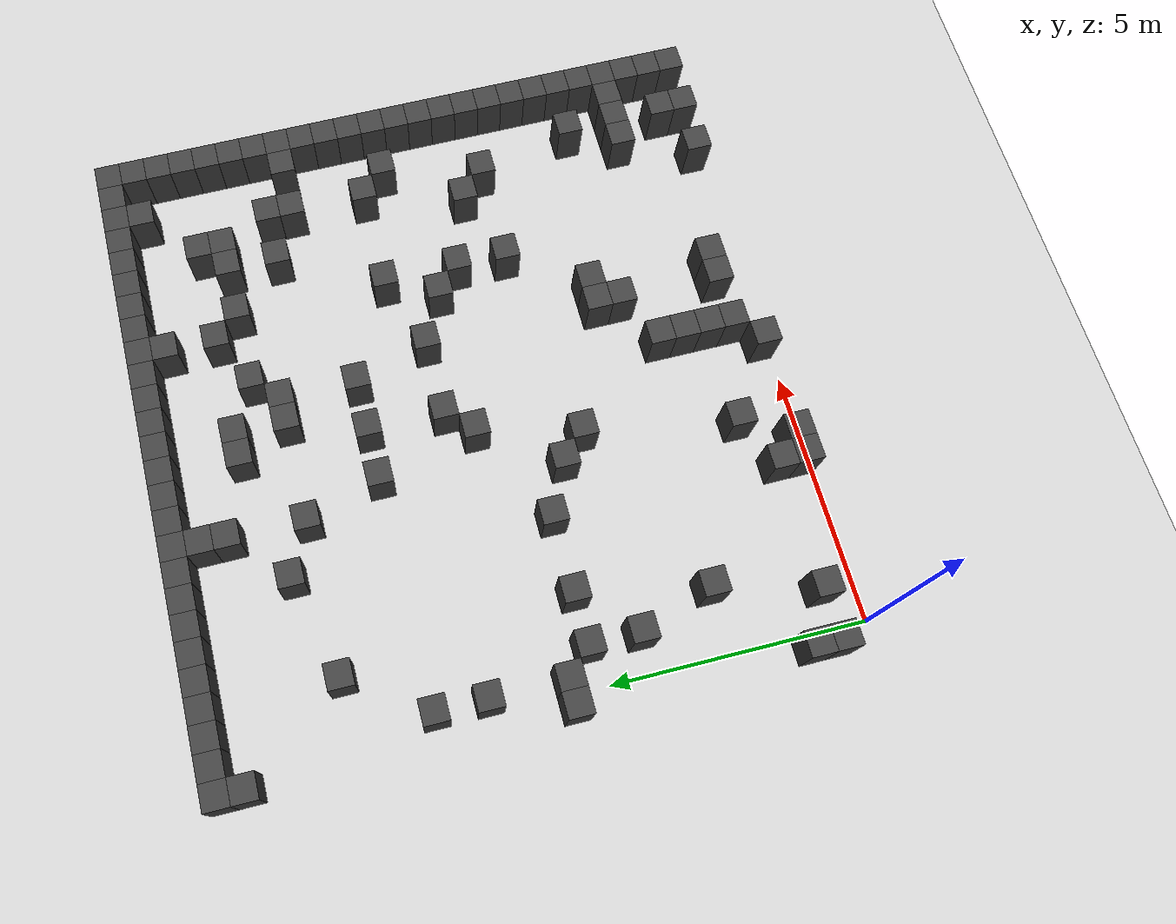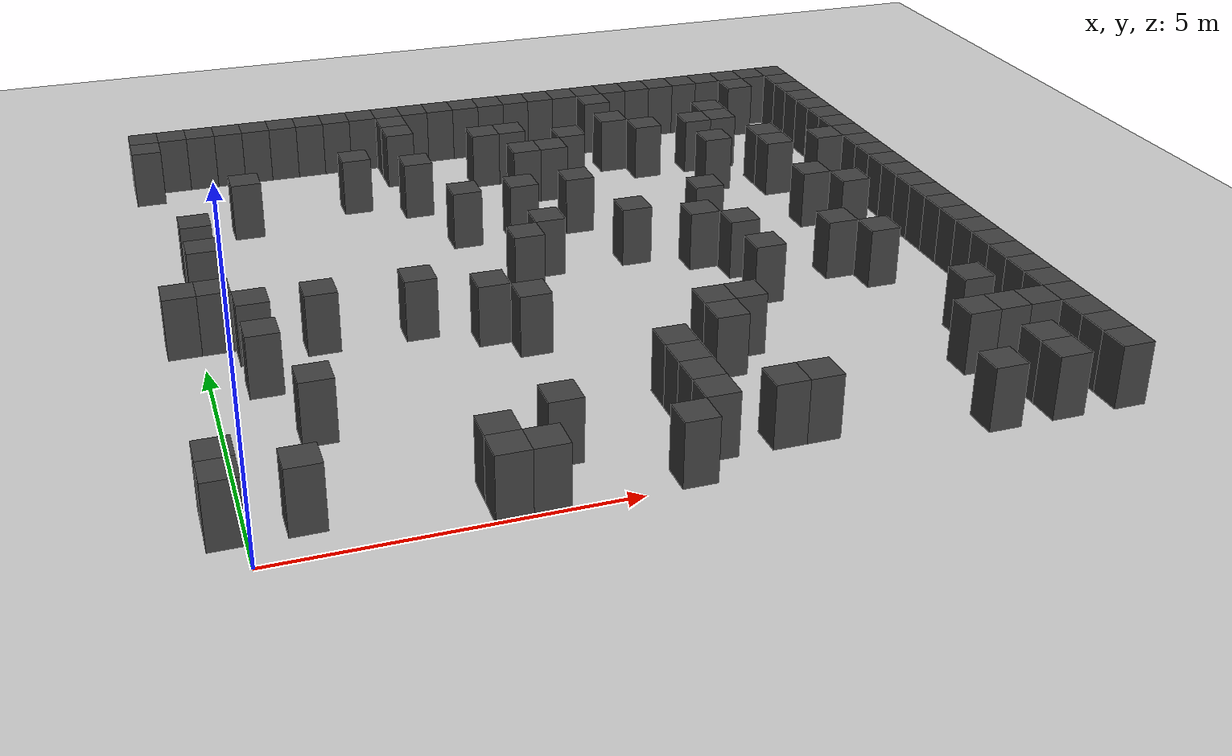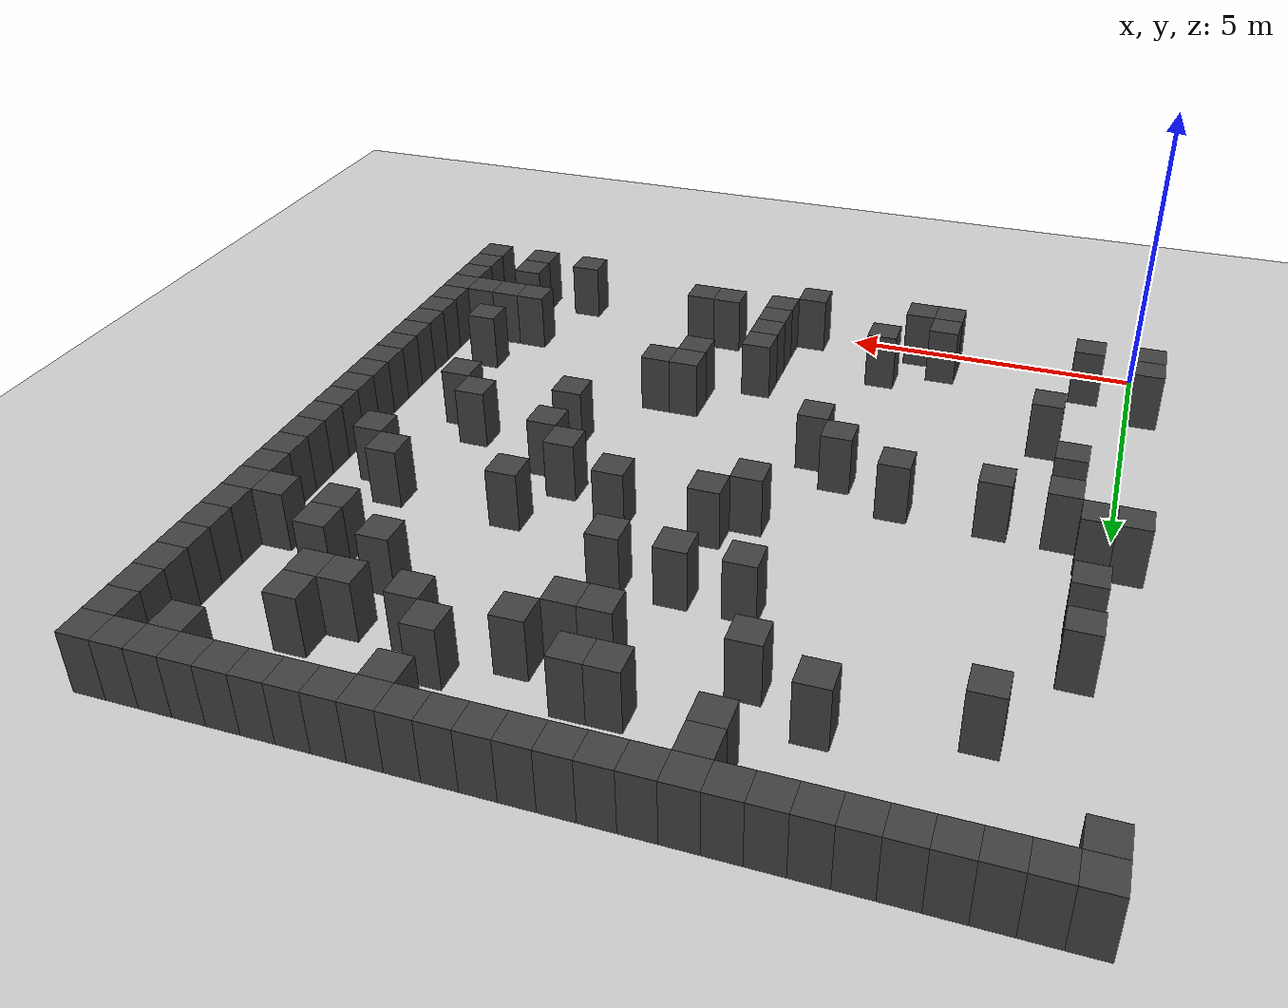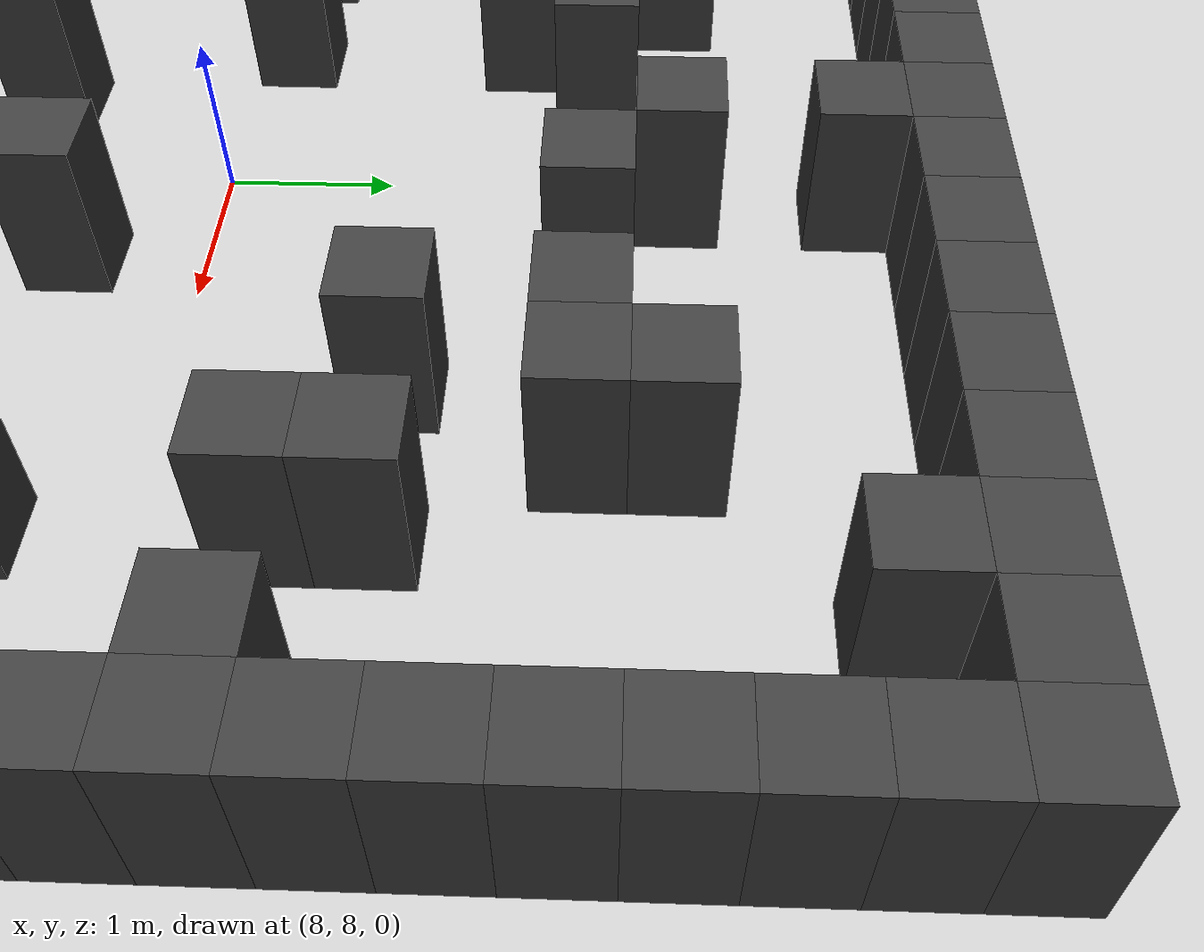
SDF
<sdf version="1.7">
 <world name="map_2375">
  <model name="ground_plane">
   <static>true</static>
   <link name="link">
    <collision name="collision">
     <geometry><plane><normal>0 0 1</normal><size>200 200</size></plane></geometry>
    </collision>
    <visual name="visual">
     <geometry><plane><normal>0 0 1</normal><size>200 200</size></plane></geometry>
     <material><ambient>0.8 0.8 0.8 1</ambient><diffuse>0.8 0.8 0.8 1</diffuse></material>
    </visual>
   </link>
  </model>
  <model name="maze_environment">
   <static>true</static>
   <link name="wall_24">
    <pose>-0.250 12.250 0.500 0 0 0</pose>
    <collision name="col"><geometry><box><size>0.5 0.5 1.0</size></box></geometry></collision>
    <visual name="vis">
     <geometry><box><size>0.5 0.5 1.0</size></box></geometry>
     <material><ambient>0.15 0.15 0.15 1</ambient><diffuse>0.25 0.25 0.25 1</diffuse></material>
    </visual>
   </link>
   <link name="wall_25">
    <pose>0.250 12.250 0.500 0 0 0</pose>
    <collision name="col"><geometry><box><size>0.5 0.5 1.0</size></box></geometry></collision>
    <visual name="vis">
     <geometry><box><size>0.5 0.5 1.0</size></box></geometry>
     <material><ambient>0.15 0.15 0.15 1</ambient><diffuse>0.25 0.25 0.25 1</diffuse></material>
    </visual>
   </link>
   <link name="wall_26">
    <pose>0.750 12.250 0.500 0 0 0</pose>
    <collision name="col"><geometry><box><size>0.5 0.5 1.0</size></box></geometry></collision>
    <visual name="vis">
     <geometry><box><size>0.5 0.5 1.0</size></box></geometry>
     <material><ambient>0.15 0.15 0.15 1</ambient><diffuse>0.25 0.25 0.25 1</diffuse></material>
    </visual>
   </link>
   <link name="wall_27">
    <pose>1.250 12.250 0.500 0 0 0</pose>
    <collision name="col"><geometry><box><size>0.5 0.5 1.0</size></box></geometry></collision>
    <visual name="vis">
     <geometry><box><size>0.5 0.5 1.0</size></box></geometry>
     <material><ambient>0.15 0.15 0.15 1</ambient><diffuse>0.25 0.25 0.25 1</diffuse></material>
    </visual>
   </link>
   <link name="wall_28">
    <pose>1.750 12.250 0.500 0 0 0</pose>
    <collision name="col"><geometry><box><size>0.5 0.5 1.0</size></box></geometry></collision>
    <visual name="vis">
     <geometry><box><size>0.5 0.5 1.0</size></box></geometry>
     <material><ambient>0.15 0.15 0.15 1</ambient><diffuse>0.25 0.25 0.25 1</diffuse></material>
    </visual>
   </link>
   <link name="wall_29">
    <pose>2.250 12.250 0.500 0 0 0</pose>
    <collision name="col"><geometry><box><size>0.5 0.5 1.0</size></box></geometry></collision>
    <visual name="vis">
     <geometry><box><size>0.5 0.5 1.0</size></box></geometry>
     <material><ambient>0.15 0.15 0.15 1</ambient><diffuse>0.25 0.25 0.25 1</diffuse></material>
    </visual>
   </link>
   <link name="wall_30">
    <pose>2.750 12.250 0.500 0 0 0</pose>
    <collision name="col"><geometry><box><size>0.5 0.5 1.0</size></box></geometry></collision>
    <visual name="vis">
     <geometry><box><size>0.5 0.5 1.0</size></box></geometry>
     <material><ambient>0.15 0.15 0.15 1</ambient><diffuse>0.25 0.25 0.25 1</diffuse></material>
    </visual>
   </link>
   <link name="wall_31">
    <pose>3.250 12.250 0.500 0 0 0</pose>
    <collision name="col"><geometry><box><size>0.5 0.5 1.0</size></box></geometry></collision>
    <visual name="vis">
     <geometry><box><size>0.5 0.5 1.0</size></box></geometry>
     <material><ambient>0.15 0.15 0.15 1</ambient><diffuse>0.25 0.25 0.25 1</diffuse></material>
    </visual>
   </link>
   <link name="wall_32">
    <pose>3.750 12.250 0.500 0 0 0</pose>
    <collision name="col"><geometry><box><size>0.5 0.5 1.0</size></box></geometry></collision>
    <visual name="vis">
     <geometry><box><size>0.5 0.5 1.0</size></box></geometry>
     <material><ambient>0.15 0.15 0.15 1</ambient><diffuse>0.25 0.25 0.25 1</diffuse></material>
    </visual>
   </link>
   <link name="wall_33">
    <pose>4.250 12.250 0.500 0 0 0</pose>
    <collision name="col"><geometry><box><size>0.5 0.5 1.0</size></box></geometry></collision>
    <visual name="vis">
     <geometry><box><size>0.5 0.5 1.0</size></box></geometry>
     <material><ambient>0.15 0.15 0.15 1</ambient><diffuse>0.25 0.25 0.25 1</diffuse></material>
    </visual>
   </link>
   <link name="wall_34">
    <pose>4.750 12.250 0.500 0 0 0</pose>
    <collision name="col"><geometry><box><size>0.5 0.5 1.0</size></box></geometry></collision>
    <visual name="vis">
     <geometry><box><size>0.5 0.5 1.0</size></box></geometry>
     <material><ambient>0.15 0.15 0.15 1</ambient><diffuse>0.25 0.25 0.25 1</diffuse></material>
    </visual>
   </link>
   <link name="wall_35">
    <pose>5.250 12.250 0.500 0 0 0</pose>
    <collision name="col"><geometry><box><size>0.5 0.5 1.0</size></box></geometry></collision>
    <visual name="vis">
     <geometry><box><size>0.5 0.5 1.0</size></box></geometry>
     <material><ambient>0.15 0.15 0.15 1</ambient><diffuse>0.25 0.25 0.25 1</diffuse></material>
    </visual>
   </link>
   <link name="wall_36">
    <pose>5.750 12.250 0.500 0 0 0</pose>
    <collision name="col"><geometry><box><size>0.5 0.5 1.0</size></box></geometry></collision>
    <visual name="vis">
     <geometry><box><size>0.5 0.5 1.0</size></box></geometry>
     <material><ambient>0.15 0.15 0.15 1</ambient><diffuse>0.25 0.25 0.25 1</diffuse></material>
    </visual>
   </link>
   <link name="wall_37">
    <pose>6.250 12.250 0.500 0 0 0</pose>
    <collision name="col"><geometry><box><size>0.5 0.5 1.0</size></box></geometry></collision>
    <visual name="vis">
     <geometry><box><size>0.5 0.5 1.0</size></box></geometry>
     <material><ambient>0.15 0.15 0.15 1</ambient><diffuse>0.25 0.25 0.25 1</diffuse></material>
    </visual>
   </link>
   <link name="wall_38">
    <pose>6.750 12.250 0.500 0 0 0</pose>
    <collision name="col"><geometry><box><size>0.5 0.5 1.0</size></box></geometry></collision>
    <visual name="vis">
     <geometry><box><size>0.5 0.5 1.0</size></box></geometry>
     <material><ambient>0.15 0.15 0.15 1</ambient><diffuse>0.25 0.25 0.25 1</diffuse></material>
    </visual>
   </link>
   <link name="wall_39">
    <pose>7.250 12.250 0.500 0 0 0</pose>
    <collision name="col"><geometry><box><size>0.5 0.5 1.0</size></box></geometry></collision>
    <visual name="vis">
     <geometry><box><size>0.5 0.5 1.0</size></box></geometry>
     <material><ambient>0.15 0.15 0.15 1</ambient><diffuse>0.25 0.25 0.25 1</diffuse></material>
    </visual>
   </link>
   <link name="wall_40">
    <pose>7.750 12.250 0.500 0 0 0</pose>
    <collision name="col"><geometry><box><size>0.5 0.5 1.0</size></box></geometry></collision>
    <visual name="vis">
     <geometry><box><size>0.5 0.5 1.0</size></box></geometry>
     <material><ambient>0.15 0.15 0.15 1</ambient><diffuse>0.25 0.25 0.25 1</diffuse></material>
    </visual>
   </link>
   <link name="wall_41">
    <pose>8.250 12.250 0.500 0 0 0</pose>
    <collision name="col"><geometry><box><size>0.5 0.5 1.0</size></box></geometry></collision>
    <visual name="vis">
     <geometry><box><size>0.5 0.5 1.0</size></box></geometry>
     <material><ambient>0.15 0.15 0.15 1</ambient><diffuse>0.25 0.25 0.25 1</diffuse></material>
    </visual>
   </link>
   <link name="wall_42">
    <pose>8.750 12.250 0.500 0 0 0</pose>
    <collision name="col"><geometry><box><size>0.5 0.5 1.0</size></box></geometry></collision>
    <visual name="vis">
     <geometry><box><size>0.5 0.5 1.0</size></box></geometry>
     <material><ambient>0.15 0.15 0.15 1</ambient><diffuse>0.25 0.25 0.25 1</diffuse></material>
    </visual>
   </link>
   <link name="wall_43">
    <pose>9.250 12.250 0.500 0 0 0</pose>
    <collision name="col"><geometry><box><size>0.5 0.5 1.0</size></box></geometry></collision>
    <visual name="vis">
     <geometry><box><size>0.5 0.5 1.0</size></box></geometry>
     <material><ambient>0.15 0.15 0.15 1</ambient><diffuse>0.25 0.25 0.25 1</diffuse></material>
    </visual>
   </link>
   <link name="wall_44">
    <pose>9.750 12.250 0.500 0 0 0</pose>
    <collision name="col"><geometry><box><size>0.5 0.5 1.0</size></box></geometry></collision>
    <visual name="vis">
     <geometry><box><size>0.5 0.5 1.0</size></box></geometry>
     <material><ambient>0.15 0.15 0.15 1</ambient><diffuse>0.25 0.25 0.25 1</diffuse></material>
    </visual>
   </link>
   <link name="wall_45">
    <pose>10.250 12.250 0.500 0 0 0</pose>
    <collision name="col"><geometry><box><size>0.5 0.5 1.0</size></box></geometry></collision>
    <visual name="vis">
     <geometry><box><size>0.5 0.5 1.0</size></box></geometry>
     <material><ambient>0.15 0.15 0.15 1</ambient><diffuse>0.25 0.25 0.25 1</diffuse></material>
    </visual>
   </link>
   <link name="wall_46">
    <pose>10.750 12.250 0.500 0 0 0</pose>
    <collision name="col"><geometry><box><size>0.5 0.5 1.0</size></box></geometry></collision>
    <visual name="vis">
     <geometry><box><size>0.5 0.5 1.0</size></box></geometry>
     <material><ambient>0.15 0.15 0.15 1</ambient><diffuse>0.25 0.25 0.25 1</diffuse></material>
    </visual>
   </link>
   <link name="wall_47">
    <pose>11.250 12.250 0.500 0 0 0</pose>
    <collision name="col"><geometry><box><size>0.5 0.5 1.0</size></box></geometry></collision>
    <visual name="vis">
     <geometry><box><size>0.5 0.5 1.0</size></box></geometry>
     <material><ambient>0.15 0.15 0.15 1</ambient><diffuse>0.25 0.25 0.25 1</diffuse></material>
    </visual>
   </link>
   <link name="wall_48">
    <pose>11.750 12.250 0.500 0 0 0</pose>
    <collision name="col"><geometry><box><size>0.5 0.5 1.0</size></box></geometry></collision>
    <visual name="vis">
     <geometry><box><size>0.5 0.5 1.0</size></box></geometry>
     <material><ambient>0.15 0.15 0.15 1</ambient><diffuse>0.25 0.25 0.25 1</diffuse></material>
    </visual>
   </link>
   <link name="wall_49">
    <pose>12.250 12.250 0.500 0 0 0</pose>
    <collision name="col"><geometry><box><size>0.5 0.5 1.0</size></box></geometry></collision>
    <visual name="vis">
     <geometry><box><size>0.5 0.5 1.0</size></box></geometry>
     <material><ambient>0.15 0.15 0.15 1</ambient><diffuse>0.25 0.25 0.25 1</diffuse></material>
    </visual>
   </link>
   <link name="wall_53">
    <pose>-0.250 11.750 0.500 0 0 0</pose>
    <collision name="col"><geometry><box><size>0.5 0.5 1.0</size></box></geometry></collision>
    <visual name="vis">
     <geometry><box><size>0.5 0.5 1.0</size></box></geometry>
     <material><ambient>0.15 0.15 0.15 1</ambient><diffuse>0.25 0.25 0.25 1</diffuse></material>
    </visual>
   </link>
   <link name="wall_54">
    <pose>4.250 11.750 0.500 0 0 0</pose>
    <collision name="col"><geometry><box><size>0.5 0.5 1.0</size></box></geometry></collision>
    <visual name="vis">
     <geometry><box><size>0.5 0.5 1.0</size></box></geometry>
     <material><ambient>0.15 0.15 0.15 1</ambient><diffuse>0.25 0.25 0.25 1</diffuse></material>
    </visual>
   </link>
   <link name="wall_55">
    <pose>8.250 11.750 0.500 0 0 0</pose>
    <collision name="col"><geometry><box><size>0.5 0.5 1.0</size></box></geometry></collision>
    <visual name="vis">
     <geometry><box><size>0.5 0.5 1.0</size></box></geometry>
     <material><ambient>0.15 0.15 0.15 1</ambient><diffuse>0.25 0.25 0.25 1</diffuse></material>
    </visual>
   </link>
   <link name="wall_56">
    <pose>11.250 11.750 0.500 0 0 0</pose>
    <collision name="col"><geometry><box><size>0.5 0.5 1.0</size></box></geometry></collision>
    <visual name="vis">
     <geometry><box><size>0.5 0.5 1.0</size></box></geometry>
     <material><ambient>0.15 0.15 0.15 1</ambient><diffuse>0.25 0.25 0.25 1</diffuse></material>
    </visual>
   </link>
   <link name="wall_57">
    <pose>12.250 11.750 0.500 0 0 0</pose>
    <collision name="col"><geometry><box><size>0.5 0.5 1.0</size></box></geometry></collision>
    <visual name="vis">
     <geometry><box><size>0.5 0.5 1.0</size></box></geometry>
     <material><ambient>0.15 0.15 0.15 1</ambient><diffuse>0.25 0.25 0.25 1</diffuse></material>
    </visual>
   </link>
   <link name="wall_61">
    <pose>4.250 11.250 0.500 0 0 0</pose>
    <collision name="col"><geometry><box><size>0.5 0.5 1.0</size></box></geometry></collision>
    <visual name="vis">
     <geometry><box><size>0.5 0.5 1.0</size></box></geometry>
     <material><ambient>0.15 0.15 0.15 1</ambient><diffuse>0.25 0.25 0.25 1</diffuse></material>
    </visual>
   </link>
   <link name="wall_62">
    <pose>12.250 11.250 0.500 0 0 0</pose>
    <collision name="col"><geometry><box><size>0.5 0.5 1.0</size></box></geometry></collision>
    <visual name="vis">
     <geometry><box><size>0.5 0.5 1.0</size></box></geometry>
     <material><ambient>0.15 0.15 0.15 1</ambient><diffuse>0.25 0.25 0.25 1</diffuse></material>
    </visual>
   </link>
   <link name="wall_68">
    <pose>5.750 10.750 0.500 0 0 0</pose>
    <collision name="col"><geometry><box><size>0.5 0.5 1.0</size></box></geometry></collision>
    <visual name="vis">
     <geometry><box><size>0.5 0.5 1.0</size></box></geometry>
     <material><ambient>0.15 0.15 0.15 1</ambient><diffuse>0.25 0.25 0.25 1</diffuse></material>
    </visual>
   </link>
   <link name="wall_69">
    <pose>6.250 10.750 0.500 0 0 0</pose>
    <collision name="col"><geometry><box><size>0.5 0.5 1.0</size></box></geometry></collision>
    <visual name="vis">
     <geometry><box><size>0.5 0.5 1.0</size></box></geometry>
     <material><ambient>0.15 0.15 0.15 1</ambient><diffuse>0.25 0.25 0.25 1</diffuse></material>
    </visual>
   </link>
   <link name="wall_70">
    <pose>8.250 10.750 0.500 0 0 0</pose>
    <collision name="col"><geometry><box><size>0.5 0.5 1.0</size></box></geometry></collision>
    <visual name="vis">
     <geometry><box><size>0.5 0.5 1.0</size></box></geometry>
     <material><ambient>0.15 0.15 0.15 1</ambient><diffuse>0.25 0.25 0.25 1</diffuse></material>
    </visual>
   </link>
   <link name="wall_71">
    <pose>10.250 10.750 0.500 0 0 0</pose>
    <collision name="col"><geometry><box><size>0.5 0.5 1.0</size></box></geometry></collision>
    <visual name="vis">
     <geometry><box><size>0.5 0.5 1.0</size></box></geometry>
     <material><ambient>0.15 0.15 0.15 1</ambient><diffuse>0.25 0.25 0.25 1</diffuse></material>
    </visual>
   </link>
   <link name="wall_72">
    <pose>12.250 10.750 0.500 0 0 0</pose>
    <collision name="col"><geometry><box><size>0.5 0.5 1.0</size></box></geometry></collision>
    <visual name="vis">
     <geometry><box><size>0.5 0.5 1.0</size></box></geometry>
     <material><ambient>0.15 0.15 0.15 1</ambient><diffuse>0.25 0.25 0.25 1</diffuse></material>
    </visual>
   </link>
   <link name="wall_78">
    <pose>3.250 10.250 0.500 0 0 0</pose>
    <collision name="col"><geometry><box><size>0.5 0.5 1.0</size></box></geometry></collision>
    <visual name="vis">
     <geometry><box><size>0.5 0.5 1.0</size></box></geometry>
     <material><ambient>0.15 0.15 0.15 1</ambient><diffuse>0.25 0.25 0.25 1</diffuse></material>
    </visual>
   </link>
   <link name="wall_79">
    <pose>7.250 10.250 0.500 0 0 0</pose>
    <collision name="col"><geometry><box><size>0.5 0.5 1.0</size></box></geometry></collision>
    <visual name="vis">
     <geometry><box><size>0.5 0.5 1.0</size></box></geometry>
     <material><ambient>0.15 0.15 0.15 1</ambient><diffuse>0.25 0.25 0.25 1</diffuse></material>
    </visual>
   </link>
   <link name="wall_80">
    <pose>8.750 10.250 0.500 0 0 0</pose>
    <collision name="col"><geometry><box><size>0.5 0.5 1.0</size></box></geometry></collision>
    <visual name="vis">
     <geometry><box><size>0.5 0.5 1.0</size></box></geometry>
     <material><ambient>0.15 0.15 0.15 1</ambient><diffuse>0.25 0.25 0.25 1</diffuse></material>
    </visual>
   </link>
   <link name="wall_81">
    <pose>9.750 10.250 0.500 0 0 0</pose>
    <collision name="col"><geometry><box><size>0.5 0.5 1.0</size></box></geometry></collision>
    <visual name="vis">
     <geometry><box><size>0.5 0.5 1.0</size></box></geometry>
     <material><ambient>0.15 0.15 0.15 1</ambient><diffuse>0.25 0.25 0.25 1</diffuse></material>
    </visual>
   </link>
   <link name="wall_82">
    <pose>10.250 10.250 0.500 0 0 0</pose>
    <collision name="col"><geometry><box><size>0.5 0.5 1.0</size></box></geometry></collision>
    <visual name="vis">
     <geometry><box><size>0.5 0.5 1.0</size></box></geometry>
     <material><ambient>0.15 0.15 0.15 1</ambient><diffuse>0.25 0.25 0.25 1</diffuse></material>
    </visual>
   </link>
   <link name="wall_83">
    <pose>12.250 10.250 0.500 0 0 0</pose>
    <collision name="col"><geometry><box><size>0.5 0.5 1.0</size></box></geometry></collision>
    <visual name="vis">
     <geometry><box><size>0.5 0.5 1.0</size></box></geometry>
     <material><ambient>0.15 0.15 0.15 1</ambient><diffuse>0.25 0.25 0.25 1</diffuse></material>
    </visual>
   </link>
   <link name="wall_86">
    <pose>1.250 9.750 0.500 0 0 0</pose>
    <collision name="col"><geometry><box><size>0.5 0.5 1.0</size></box></geometry></collision>
    <visual name="vis">
     <geometry><box><size>0.5 0.5 1.0</size></box></geometry>
     <material><ambient>0.15 0.15 0.15 1</ambient><diffuse>0.25 0.25 0.25 1</diffuse></material>
    </visual>
   </link>
   <link name="wall_87">
    <pose>4.250 9.750 0.500 0 0 0</pose>
    <collision name="col"><geometry><box><size>0.5 0.5 1.0</size></box></geometry></collision>
    <visual name="vis">
     <geometry><box><size>0.5 0.5 1.0</size></box></geometry>
     <material><ambient>0.15 0.15 0.15 1</ambient><diffuse>0.25 0.25 0.25 1</diffuse></material>
    </visual>
   </link>
   <link name="wall_88">
    <pose>6.250 9.750 0.500 0 0 0</pose>
    <collision name="col"><geometry><box><size>0.5 0.5 1.0</size></box></geometry></collision>
    <visual name="vis">
     <geometry><box><size>0.5 0.5 1.0</size></box></geometry>
     <material><ambient>0.15 0.15 0.15 1</ambient><diffuse>0.25 0.25 0.25 1</diffuse></material>
    </visual>
   </link>
   <link name="wall_89">
    <pose>6.750 9.750 0.500 0 0 0</pose>
    <collision name="col"><geometry><box><size>0.5 0.5 1.0</size></box></geometry></collision>
    <visual name="vis">
     <geometry><box><size>0.5 0.5 1.0</size></box></geometry>
     <material><ambient>0.15 0.15 0.15 1</ambient><diffuse>0.25 0.25 0.25 1</diffuse></material>
    </visual>
   </link>
   <link name="wall_90">
    <pose>12.250 9.750 0.500 0 0 0</pose>
    <collision name="col"><geometry><box><size>0.5 0.5 1.0</size></box></geometry></collision>
    <visual name="vis">
     <geometry><box><size>0.5 0.5 1.0</size></box></geometry>
     <material><ambient>0.15 0.15 0.15 1</ambient><diffuse>0.25 0.25 0.25 1</diffuse></material>
    </visual>
   </link>
   <link name="wall_96">
    <pose>9.750 9.250 0.500 0 0 0</pose>
    <collision name="col"><geometry><box><size>0.5 0.5 1.0</size></box></geometry></collision>
    <visual name="vis">
     <geometry><box><size>0.5 0.5 1.0</size></box></geometry>
     <material><ambient>0.15 0.15 0.15 1</ambient><diffuse>0.25 0.25 0.25 1</diffuse></material>
    </visual>
   </link>
   <link name="wall_97">
    <pose>10.750 9.250 0.500 0 0 0</pose>
    <collision name="col"><geometry><box><size>0.5 0.5 1.0</size></box></geometry></collision>
    <visual name="vis">
     <geometry><box><size>0.5 0.5 1.0</size></box></geometry>
     <material><ambient>0.15 0.15 0.15 1</ambient><diffuse>0.25 0.25 0.25 1</diffuse></material>
    </visual>
   </link>
   <link name="wall_98">
    <pose>12.250 9.250 0.500 0 0 0</pose>
    <collision name="col"><geometry><box><size>0.5 0.5 1.0</size></box></geometry></collision>
    <visual name="vis">
     <geometry><box><size>0.5 0.5 1.0</size></box></geometry>
     <material><ambient>0.15 0.15 0.15 1</ambient><diffuse>0.25 0.25 0.25 1</diffuse></material>
    </visual>
   </link>
   <link name="wall_101">
    <pose>10.750 8.750 0.500 0 0 0</pose>
    <collision name="col"><geometry><box><size>0.5 0.5 1.0</size></box></geometry></collision>
    <visual name="vis">
     <geometry><box><size>0.5 0.5 1.0</size></box></geometry>
     <material><ambient>0.15 0.15 0.15 1</ambient><diffuse>0.25 0.25 0.25 1</diffuse></material>
    </visual>
   </link>
   <link name="wall_102">
    <pose>11.750 8.750 0.500 0 0 0</pose>
    <collision name="col"><geometry><box><size>0.5 0.5 1.0</size></box></geometry></collision>
    <visual name="vis">
     <geometry><box><size>0.5 0.5 1.0</size></box></geometry>
     <material><ambient>0.15 0.15 0.15 1</ambient><diffuse>0.25 0.25 0.25 1</diffuse></material>
    </visual>
   </link>
   <link name="wall_103">
    <pose>12.250 8.750 0.500 0 0 0</pose>
    <collision name="col"><geometry><box><size>0.5 0.5 1.0</size></box></geometry></collision>
    <visual name="vis">
     <geometry><box><size>0.5 0.5 1.0</size></box></geometry>
     <material><ambient>0.15 0.15 0.15 1</ambient><diffuse>0.25 0.25 0.25 1</diffuse></material>
    </visual>
   </link>
   <link name="wall_107">
    <pose>0.250 8.250 0.500 0 0 0</pose>
    <collision name="col"><geometry><box><size>0.5 0.5 1.0</size></box></geometry></collision>
    <visual name="vis">
     <geometry><box><size>0.5 0.5 1.0</size></box></geometry>
     <material><ambient>0.15 0.15 0.15 1</ambient><diffuse>0.25 0.25 0.25 1</diffuse></material>
    </visual>
   </link>
   <link name="wall_108">
    <pose>4.750 8.250 0.500 0 0 0</pose>
    <collision name="col"><geometry><box><size>0.5 0.5 1.0</size></box></geometry></collision>
    <visual name="vis">
     <geometry><box><size>0.5 0.5 1.0</size></box></geometry>
     <material><ambient>0.15 0.15 0.15 1</ambient><diffuse>0.25 0.25 0.25 1</diffuse></material>
    </visual>
   </link>
   <link name="wall_109">
    <pose>5.750 8.250 0.500 0 0 0</pose>
    <collision name="col"><geometry><box><size>0.5 0.5 1.0</size></box></geometry></collision>
    <visual name="vis">
     <geometry><box><size>0.5 0.5 1.0</size></box></geometry>
     <material><ambient>0.15 0.15 0.15 1</ambient><diffuse>0.25 0.25 0.25 1</diffuse></material>
    </visual>
   </link>
   <link name="wall_110">
    <pose>6.750 8.250 0.500 0 0 0</pose>
    <collision name="col"><geometry><box><size>0.5 0.5 1.0</size></box></geometry></collision>
    <visual name="vis">
     <geometry><box><size>0.5 0.5 1.0</size></box></geometry>
     <material><ambient>0.15 0.15 0.15 1</ambient><diffuse>0.25 0.25 0.25 1</diffuse></material>
    </visual>
   </link>
   <link name="wall_111">
    <pose>12.250 8.250 0.500 0 0 0</pose>
    <collision name="col"><geometry><box><size>0.5 0.5 1.0</size></box></geometry></collision>
    <visual name="vis">
     <geometry><box><size>0.5 0.5 1.0</size></box></geometry>
     <material><ambient>0.15 0.15 0.15 1</ambient><diffuse>0.25 0.25 0.25 1</diffuse></material>
    </visual>
   </link>
   <link name="wall_116">
    <pose>12.250 7.750 0.500 0 0 0</pose>
    <collision name="col"><geometry><box><size>0.5 0.5 1.0</size></box></geometry></collision>
    <visual name="vis">
     <geometry><box><size>0.5 0.5 1.0</size></box></geometry>
     <material><ambient>0.15 0.15 0.15 1</ambient><diffuse>0.25 0.25 0.25 1</diffuse></material>
    </visual>
   </link>
   <link name="wall_125">
    <pose>0.250 7.250 0.500 0 0 0</pose>
    <collision name="col"><geometry><box><size>0.5 0.5 1.0</size></box></geometry></collision>
    <visual name="vis">
     <geometry><box><size>0.5 0.5 1.0</size></box></geometry>
     <material><ambient>0.15 0.15 0.15 1</ambient><diffuse>0.25 0.25 0.25 1</diffuse></material>
    </visual>
   </link>
   <link name="wall_126">
    <pose>8.750 7.250 0.500 0 0 0</pose>
    <collision name="col"><geometry><box><size>0.5 0.5 1.0</size></box></geometry></collision>
    <visual name="vis">
     <geometry><box><size>0.5 0.5 1.0</size></box></geometry>
     <material><ambient>0.15 0.15 0.15 1</ambient><diffuse>0.25 0.25 0.25 1</diffuse></material>
    </visual>
   </link>
   <link name="wall_127">
    <pose>10.750 7.250 0.500 0 0 0</pose>
    <collision name="col"><geometry><box><size>0.5 0.5 1.0</size></box></geometry></collision>
    <visual name="vis">
     <geometry><box><size>0.5 0.5 1.0</size></box></geometry>
     <material><ambient>0.15 0.15 0.15 1</ambient><diffuse>0.25 0.25 0.25 1</diffuse></material>
    </visual>
   </link>
   <link name="wall_128">
    <pose>12.250 7.250 0.500 0 0 0</pose>
    <collision name="col"><geometry><box><size>0.5 0.5 1.0</size></box></geometry></collision>
    <visual name="vis">
     <geometry><box><size>0.5 0.5 1.0</size></box></geometry>
     <material><ambient>0.15 0.15 0.15 1</ambient><diffuse>0.25 0.25 0.25 1</diffuse></material>
    </visual>
   </link>
   <link name="wall_132">
    <pose>5.750 6.750 0.500 0 0 0</pose>
    <collision name="col"><geometry><box><size>0.5 0.5 1.0</size></box></geometry></collision>
    <visual name="vis">
     <geometry><box><size>0.5 0.5 1.0</size></box></geometry>
     <material><ambient>0.15 0.15 0.15 1</ambient><diffuse>0.25 0.25 0.25 1</diffuse></material>
    </visual>
   </link>
   <link name="wall_133">
    <pose>7.250 6.750 0.500 0 0 0</pose>
    <collision name="col"><geometry><box><size>0.5 0.5 1.0</size></box></geometry></collision>
    <visual name="vis">
     <geometry><box><size>0.5 0.5 1.0</size></box></geometry>
     <material><ambient>0.15 0.15 0.15 1</ambient><diffuse>0.25 0.25 0.25 1</diffuse></material>
    </visual>
   </link>
   <link name="wall_134">
    <pose>11.250 6.750 0.500 0 0 0</pose>
    <collision name="col"><geometry><box><size>0.5 0.5 1.0</size></box></geometry></collision>
    <visual name="vis">
     <geometry><box><size>0.5 0.5 1.0</size></box></geometry>
     <material><ambient>0.15 0.15 0.15 1</ambient><diffuse>0.25 0.25 0.25 1</diffuse></material>
    </visual>
   </link>
   <link name="wall_135">
    <pose>12.250 6.750 0.500 0 0 0</pose>
    <collision name="col"><geometry><box><size>0.5 0.5 1.0</size></box></geometry></collision>
    <visual name="vis">
     <geometry><box><size>0.5 0.5 1.0</size></box></geometry>
     <material><ambient>0.15 0.15 0.15 1</ambient><diffuse>0.25 0.25 0.25 1</diffuse></material>
    </visual>
   </link>
   <link name="wall_142">
    <pose>5.250 6.250 0.500 0 0 0</pose>
    <collision name="col"><geometry><box><size>0.5 0.5 1.0</size></box></geometry></collision>
    <visual name="vis">
     <geometry><box><size>0.5 0.5 1.0</size></box></geometry>
     <material><ambient>0.15 0.15 0.15 1</ambient><diffuse>0.25 0.25 0.25 1</diffuse></material>
    </visual>
   </link>
   <link name="wall_143">
    <pose>8.250 6.250 0.500 0 0 0</pose>
    <collision name="col"><geometry><box><size>0.5 0.5 1.0</size></box></geometry></collision>
    <visual name="vis">
     <geometry><box><size>0.5 0.5 1.0</size></box></geometry>
     <material><ambient>0.15 0.15 0.15 1</ambient><diffuse>0.25 0.25 0.25 1</diffuse></material>
    </visual>
   </link>
   <link name="wall_144">
    <pose>12.250 6.250 0.500 0 0 0</pose>
    <collision name="col"><geometry><box><size>0.5 0.5 1.0</size></box></geometry></collision>
    <visual name="vis">
     <geometry><box><size>0.5 0.5 1.0</size></box></geometry>
     <material><ambient>0.15 0.15 0.15 1</ambient><diffuse>0.25 0.25 0.25 1</diffuse></material>
    </visual>
   </link>
   <link name="wall_148">
    <pose>-0.250 5.750 0.500 0 0 0</pose>
    <collision name="col"><geometry><box><size>0.5 0.5 1.0</size></box></geometry></collision>
    <visual name="vis">
     <geometry><box><size>0.5 0.5 1.0</size></box></geometry>
     <material><ambient>0.15 0.15 0.15 1</ambient><diffuse>0.25 0.25 0.25 1</diffuse></material>
    </visual>
   </link>
   <link name="wall_149">
    <pose>0.250 5.750 0.500 0 0 0</pose>
    <collision name="col"><geometry><box><size>0.5 0.5 1.0</size></box></geometry></collision>
    <visual name="vis">
     <geometry><box><size>0.5 0.5 1.0</size></box></geometry>
     <material><ambient>0.15 0.15 0.15 1</ambient><diffuse>0.25 0.25 0.25 1</diffuse></material>
    </visual>
   </link>
   <link name="wall_150">
    <pose>8.750 5.750 0.500 0 0 0</pose>
    <collision name="col"><geometry><box><size>0.5 0.5 1.0</size></box></geometry></collision>
    <visual name="vis">
     <geometry><box><size>0.5 0.5 1.0</size></box></geometry>
     <material><ambient>0.15 0.15 0.15 1</ambient><diffuse>0.25 0.25 0.25 1</diffuse></material>
    </visual>
   </link>
   <link name="wall_151">
    <pose>12.250 5.750 0.500 0 0 0</pose>
    <collision name="col"><geometry><box><size>0.5 0.5 1.0</size></box></geometry></collision>
    <visual name="vis">
     <geometry><box><size>0.5 0.5 1.0</size></box></geometry>
     <material><ambient>0.15 0.15 0.15 1</ambient><diffuse>0.25 0.25 0.25 1</diffuse></material>
    </visual>
   </link>
   <link name="wall_157">
    <pose>0.750 5.250 0.500 0 0 0</pose>
    <collision name="col"><geometry><box><size>0.5 0.5 1.0</size></box></geometry></collision>
    <visual name="vis">
     <geometry><box><size>0.5 0.5 1.0</size></box></geometry>
     <material><ambient>0.15 0.15 0.15 1</ambient><diffuse>0.25 0.25 0.25 1</diffuse></material>
    </visual>
   </link>
   <link name="wall_158">
    <pose>1.750 5.250 0.500 0 0 0</pose>
    <collision name="col"><geometry><box><size>0.5 0.5 1.0</size></box></geometry></collision>
    <visual name="vis">
     <geometry><box><size>0.5 0.5 1.0</size></box></geometry>
     <material><ambient>0.15 0.15 0.15 1</ambient><diffuse>0.25 0.25 0.25 1</diffuse></material>
    </visual>
   </link>
   <link name="wall_159">
    <pose>3.250 5.250 0.500 0 0 0</pose>
    <collision name="col"><geometry><box><size>0.5 0.5 1.0</size></box></geometry></collision>
    <visual name="vis">
     <geometry><box><size>0.5 0.5 1.0</size></box></geometry>
     <material><ambient>0.15 0.15 0.15 1</ambient><diffuse>0.25 0.25 0.25 1</diffuse></material>
    </visual>
   </link>
   <link name="wall_160">
    <pose>10.250 5.250 0.500 0 0 0</pose>
    <collision name="col"><geometry><box><size>0.5 0.5 1.0</size></box></geometry></collision>
    <visual name="vis">
     <geometry><box><size>0.5 0.5 1.0</size></box></geometry>
     <material><ambient>0.15 0.15 0.15 1</ambient><diffuse>0.25 0.25 0.25 1</diffuse></material>
    </visual>
   </link>
   <link name="wall_161">
    <pose>12.250 5.250 0.500 0 0 0</pose>
    <collision name="col"><geometry><box><size>0.5 0.5 1.0</size></box></geometry></collision>
    <visual name="vis">
     <geometry><box><size>0.5 0.5 1.0</size></box></geometry>
     <material><ambient>0.15 0.15 0.15 1</ambient><diffuse>0.25 0.25 0.25 1</diffuse></material>
    </visual>
   </link>
   <link name="wall_166">
    <pose>4.250 4.750 0.500 0 0 0</pose>
    <collision name="col"><geometry><box><size>0.5 0.5 1.0</size></box></geometry></collision>
    <visual name="vis">
     <geometry><box><size>0.5 0.5 1.0</size></box></geometry>
     <material><ambient>0.15 0.15 0.15 1</ambient><diffuse>0.25 0.25 0.25 1</diffuse></material>
    </visual>
   </link>
   <link name="wall_167">
    <pose>8.750 4.750 0.500 0 0 0</pose>
    <collision name="col"><geometry><box><size>0.5 0.5 1.0</size></box></geometry></collision>
    <visual name="vis">
     <geometry><box><size>0.5 0.5 1.0</size></box></geometry>
     <material><ambient>0.15 0.15 0.15 1</ambient><diffuse>0.25 0.25 0.25 1</diffuse></material>
    </visual>
   </link>
   <link name="wall_168">
    <pose>10.750 4.750 0.500 0 0 0</pose>
    <collision name="col"><geometry><box><size>0.5 0.5 1.0</size></box></geometry></collision>
    <visual name="vis">
     <geometry><box><size>0.5 0.5 1.0</size></box></geometry>
     <material><ambient>0.15 0.15 0.15 1</ambient><diffuse>0.25 0.25 0.25 1</diffuse></material>
    </visual>
   </link>
   <link name="wall_169">
    <pose>12.250 4.750 0.500 0 0 0</pose>
    <collision name="col"><geometry><box><size>0.5 0.5 1.0</size></box></geometry></collision>
    <visual name="vis">
     <geometry><box><size>0.5 0.5 1.0</size></box></geometry>
     <material><ambient>0.15 0.15 0.15 1</ambient><diffuse>0.25 0.25 0.25 1</diffuse></material>
    </visual>
   </link>
   <link name="wall_178">
    <pose>0.750 4.250 0.500 0 0 0</pose>
    <collision name="col"><geometry><box><size>0.5 0.5 1.0</size></box></geometry></collision>
    <visual name="vis">
     <geometry><box><size>0.5 0.5 1.0</size></box></geometry>
     <material><ambient>0.15 0.15 0.15 1</ambient><diffuse>0.25 0.25 0.25 1</diffuse></material>
    </visual>
   </link>
   <link name="wall_179">
    <pose>4.750 4.250 0.500 0 0 0</pose>
    <collision name="col"><geometry><box><size>0.5 0.5 1.0</size></box></geometry></collision>
    <visual name="vis">
     <geometry><box><size>0.5 0.5 1.0</size></box></geometry>
     <material><ambient>0.15 0.15 0.15 1</ambient><diffuse>0.25 0.25 0.25 1</diffuse></material>
    </visual>
   </link>
   <link name="wall_180">
    <pose>12.250 4.250 0.500 0 0 0</pose>
    <collision name="col"><geometry><box><size>0.5 0.5 1.0</size></box></geometry></collision>
    <visual name="vis">
     <geometry><box><size>0.5 0.5 1.0</size></box></geometry>
     <material><ambient>0.15 0.15 0.15 1</ambient><diffuse>0.25 0.25 0.25 1</diffuse></material>
    </visual>
   </link>
   <link name="wall_185">
    <pose>12.250 3.750 0.500 0 0 0</pose>
    <collision name="col"><geometry><box><size>0.5 0.5 1.0</size></box></geometry></collision>
    <visual name="vis">
     <geometry><box><size>0.5 0.5 1.0</size></box></geometry>
     <material><ambient>0.15 0.15 0.15 1</ambient><diffuse>0.25 0.25 0.25 1</diffuse></material>
    </visual>
   </link>
   <link name="wall_190">
    <pose>7.250 3.250 0.500 0 0 0</pose>
    <collision name="col"><geometry><box><size>0.5 0.5 1.0</size></box></geometry></collision>
    <visual name="vis">
     <geometry><box><size>0.5 0.5 1.0</size></box></geometry>
     <material><ambient>0.15 0.15 0.15 1</ambient><diffuse>0.25 0.25 0.25 1</diffuse></material>
    </visual>
   </link>
   <link name="wall_191">
    <pose>7.750 3.250 0.500 0 0 0</pose>
    <collision name="col"><geometry><box><size>0.5 0.5 1.0</size></box></geometry></collision>
    <visual name="vis">
     <geometry><box><size>0.5 0.5 1.0</size></box></geometry>
     <material><ambient>0.15 0.15 0.15 1</ambient><diffuse>0.25 0.25 0.25 1</diffuse></material>
    </visual>
   </link>
   <link name="wall_192">
    <pose>12.250 3.250 0.500 0 0 0</pose>
    <collision name="col"><geometry><box><size>0.5 0.5 1.0</size></box></geometry></collision>
    <visual name="vis">
     <geometry><box><size>0.5 0.5 1.0</size></box></geometry>
     <material><ambient>0.15 0.15 0.15 1</ambient><diffuse>0.25 0.25 0.25 1</diffuse></material>
    </visual>
   </link>
   <link name="wall_200">
    <pose>1.250 2.750 0.500 0 0 0</pose>
    <collision name="col"><geometry><box><size>0.5 0.5 1.0</size></box></geometry></collision>
    <visual name="vis">
     <geometry><box><size>0.5 0.5 1.0</size></box></geometry>
     <material><ambient>0.15 0.15 0.15 1</ambient><diffuse>0.25 0.25 0.25 1</diffuse></material>
    </visual>
   </link>
   <link name="wall_201">
    <pose>7.250 2.750 0.500 0 0 0</pose>
    <collision name="col"><geometry><box><size>0.5 0.5 1.0</size></box></geometry></collision>
    <visual name="vis">
     <geometry><box><size>0.5 0.5 1.0</size></box></geometry>
     <material><ambient>0.15 0.15 0.15 1</ambient><diffuse>0.25 0.25 0.25 1</diffuse></material>
    </visual>
   </link>
   <link name="wall_202">
    <pose>11.250 2.750 0.500 0 0 0</pose>
    <collision name="col"><geometry><box><size>0.5 0.5 1.0</size></box></geometry></collision>
    <visual name="vis">
     <geometry><box><size>0.5 0.5 1.0</size></box></geometry>
     <material><ambient>0.15 0.15 0.15 1</ambient><diffuse>0.25 0.25 0.25 1</diffuse></material>
    </visual>
   </link>
   <link name="wall_203">
    <pose>12.250 2.750 0.500 0 0 0</pose>
    <collision name="col"><geometry><box><size>0.5 0.5 1.0</size></box></geometry></collision>
    <visual name="vis">
     <geometry><box><size>0.5 0.5 1.0</size></box></geometry>
     <material><ambient>0.15 0.15 0.15 1</ambient><diffuse>0.25 0.25 0.25 1</diffuse></material>
    </visual>
   </link>
   <link name="wall_206">
    <pose>6.250 2.250 0.500 0 0 0</pose>
    <collision name="col"><geometry><box><size>0.5 0.5 1.0</size></box></geometry></collision>
    <visual name="vis">
     <geometry><box><size>0.5 0.5 1.0</size></box></geometry>
     <material><ambient>0.15 0.15 0.15 1</ambient><diffuse>0.25 0.25 0.25 1</diffuse></material>
    </visual>
   </link>
   <link name="wall_207">
    <pose>12.250 2.250 0.500 0 0 0</pose>
    <collision name="col"><geometry><box><size>0.5 0.5 1.0</size></box></geometry></collision>
    <visual name="vis">
     <geometry><box><size>0.5 0.5 1.0</size></box></geometry>
     <material><ambient>0.15 0.15 0.15 1</ambient><diffuse>0.25 0.25 0.25 1</diffuse></material>
    </visual>
   </link>
   <link name="wall_212">
    <pose>6.250 1.750 0.500 0 0 0</pose>
    <collision name="col"><geometry><box><size>0.5 0.5 1.0</size></box></geometry></collision>
    <visual name="vis">
     <geometry><box><size>0.5 0.5 1.0</size></box></geometry>
     <material><ambient>0.15 0.15 0.15 1</ambient><diffuse>0.25 0.25 0.25 1</diffuse></material>
    </visual>
   </link>
   <link name="wall_213">
    <pose>10.750 1.750 0.500 0 0 0</pose>
    <collision name="col"><geometry><box><size>0.5 0.5 1.0</size></box></geometry></collision>
    <visual name="vis">
     <geometry><box><size>0.5 0.5 1.0</size></box></geometry>
     <material><ambient>0.15 0.15 0.15 1</ambient><diffuse>0.25 0.25 0.25 1</diffuse></material>
    </visual>
   </link>
   <link name="wall_214">
    <pose>11.250 1.750 0.500 0 0 0</pose>
    <collision name="col"><geometry><box><size>0.5 0.5 1.0</size></box></geometry></collision>
    <visual name="vis">
     <geometry><box><size>0.5 0.5 1.0</size></box></geometry>
     <material><ambient>0.15 0.15 0.15 1</ambient><diffuse>0.25 0.25 0.25 1</diffuse></material>
    </visual>
   </link>
   <link name="wall_215">
    <pose>11.750 1.750 0.500 0 0 0</pose>
    <collision name="col"><geometry><box><size>0.5 0.5 1.0</size></box></geometry></collision>
    <visual name="vis">
     <geometry><box><size>0.5 0.5 1.0</size></box></geometry>
     <material><ambient>0.15 0.15 0.15 1</ambient><diffuse>0.25 0.25 0.25 1</diffuse></material>
    </visual>
   </link>
   <link name="wall_216">
    <pose>12.250 1.750 0.500 0 0 0</pose>
    <collision name="col"><geometry><box><size>0.5 0.5 1.0</size></box></geometry></collision>
    <visual name="vis">
     <geometry><box><size>0.5 0.5 1.0</size></box></geometry>
     <material><ambient>0.15 0.15 0.15 1</ambient><diffuse>0.25 0.25 0.25 1</diffuse></material>
    </visual>
   </link>
   <link name="wall_219">
    <pose>-0.250 1.250 0.500 0 0 0</pose>
    <collision name="col"><geometry><box><size>0.5 0.5 1.0</size></box></geometry></collision>
    <visual name="vis">
     <geometry><box><size>0.5 0.5 1.0</size></box></geometry>
     <material><ambient>0.15 0.15 0.15 1</ambient><diffuse>0.25 0.25 0.25 1</diffuse></material>
    </visual>
   </link>
   <link name="wall_220">
    <pose>4.250 1.250 0.500 0 0 0</pose>
    <collision name="col"><geometry><box><size>0.5 0.5 1.0</size></box></geometry></collision>
    <visual name="vis">
     <geometry><box><size>0.5 0.5 1.0</size></box></geometry>
     <material><ambient>0.15 0.15 0.15 1</ambient><diffuse>0.25 0.25 0.25 1</diffuse></material>
    </visual>
   </link>
   <link name="wall_221">
    <pose>6.250 1.250 0.500 0 0 0</pose>
    <collision name="col"><geometry><box><size>0.5 0.5 1.0</size></box></geometry></collision>
    <visual name="vis">
     <geometry><box><size>0.5 0.5 1.0</size></box></geometry>
     <material><ambient>0.15 0.15 0.15 1</ambient><diffuse>0.25 0.25 0.25 1</diffuse></material>
    </visual>
   </link>
   <link name="wall_222">
    <pose>12.250 1.250 0.500 0 0 0</pose>
    <collision name="col"><geometry><box><size>0.5 0.5 1.0</size></box></geometry></collision>
    <visual name="vis">
     <geometry><box><size>0.5 0.5 1.0</size></box></geometry>
     <material><ambient>0.15 0.15 0.15 1</ambient><diffuse>0.25 0.25 0.25 1</diffuse></material>
    </visual>
   </link>
   <link name="wall_227">
    <pose>-0.250 0.750 0.500 0 0 0</pose>
    <collision name="col"><geometry><box><size>0.5 0.5 1.0</size></box></geometry></collision>
    <visual name="vis">
     <geometry><box><size>0.5 0.5 1.0</size></box></geometry>
     <material><ambient>0.15 0.15 0.15 1</ambient><diffuse>0.25 0.25 0.25 1</diffuse></material>
    </visual>
   </link>
   <link name="wall_228">
    <pose>0.750 0.750 0.500 0 0 0</pose>
    <collision name="col"><geometry><box><size>0.5 0.5 1.0</size></box></geometry></collision>
    <visual name="vis">
     <geometry><box><size>0.5 0.5 1.0</size></box></geometry>
     <material><ambient>0.15 0.15 0.15 1</ambient><diffuse>0.25 0.25 0.25 1</diffuse></material>
    </visual>
   </link>
   <link name="wall_229">
    <pose>3.250 0.750 0.500 0 0 0</pose>
    <collision name="col"><geometry><box><size>0.5 0.5 1.0</size></box></geometry></collision>
    <visual name="vis">
     <geometry><box><size>0.5 0.5 1.0</size></box></geometry>
     <material><ambient>0.15 0.15 0.15 1</ambient><diffuse>0.25 0.25 0.25 1</diffuse></material>
    </visual>
   </link>
   <link name="wall_230">
    <pose>6.250 0.750 0.500 0 0 0</pose>
    <collision name="col"><geometry><box><size>0.5 0.5 1.0</size></box></geometry></collision>
    <visual name="vis">
     <geometry><box><size>0.5 0.5 1.0</size></box></geometry>
     <material><ambient>0.15 0.15 0.15 1</ambient><diffuse>0.25 0.25 0.25 1</diffuse></material>
    </visual>
   </link>
   <link name="wall_231">
    <pose>7.250 0.750 0.500 0 0 0</pose>
    <collision name="col"><geometry><box><size>0.5 0.5 1.0</size></box></geometry></collision>
    <visual name="vis">
     <geometry><box><size>0.5 0.5 1.0</size></box></geometry>
     <material><ambient>0.15 0.15 0.15 1</ambient><diffuse>0.25 0.25 0.25 1</diffuse></material>
    </visual>
   </link>
   <link name="wall_232">
    <pose>7.750 0.750 0.500 0 0 0</pose>
    <collision name="col"><geometry><box><size>0.5 0.5 1.0</size></box></geometry></collision>
    <visual name="vis">
     <geometry><box><size>0.5 0.5 1.0</size></box></geometry>
     <material><ambient>0.15 0.15 0.15 1</ambient><diffuse>0.25 0.25 0.25 1</diffuse></material>
    </visual>
   </link>
   <link name="wall_233">
    <pose>11.250 0.750 0.500 0 0 0</pose>
    <collision name="col"><geometry><box><size>0.5 0.5 1.0</size></box></geometry></collision>
    <visual name="vis">
     <geometry><box><size>0.5 0.5 1.0</size></box></geometry>
     <material><ambient>0.15 0.15 0.15 1</ambient><diffuse>0.25 0.25 0.25 1</diffuse></material>
    </visual>
   </link>
   <link name="wall_234">
    <pose>12.250 0.750 0.500 0 0 0</pose>
    <collision name="col"><geometry><box><size>0.5 0.5 1.0</size></box></geometry></collision>
    <visual name="vis">
     <geometry><box><size>0.5 0.5 1.0</size></box></geometry>
     <material><ambient>0.15 0.15 0.15 1</ambient><diffuse>0.25 0.25 0.25 1</diffuse></material>
    </visual>
   </link>
   <link name="wall_240">
    <pose>3.250 0.250 0.500 0 0 0</pose>
    <collision name="col"><geometry><box><size>0.5 0.5 1.0</size></box></geometry></collision>
    <visual name="vis">
     <geometry><box><size>0.5 0.5 1.0</size></box></geometry>
     <material><ambient>0.15 0.15 0.15 1</ambient><diffuse>0.25 0.25 0.25 1</diffuse></material>
    </visual>
   </link>
   <link name="wall_241">
    <pose>3.750 0.250 0.500 0 0 0</pose>
    <collision name="col"><geometry><box><size>0.5 0.5 1.0</size></box></geometry></collision>
    <visual name="vis">
     <geometry><box><size>0.5 0.5 1.0</size></box></geometry>
     <material><ambient>0.15 0.15 0.15 1</ambient><diffuse>0.25 0.25 0.25 1</diffuse></material>
    </visual>
   </link>
   <link name="wall_242">
    <pose>5.750 0.250 0.500 0 0 0</pose>
    <collision name="col"><geometry><box><size>0.5 0.5 1.0</size></box></geometry></collision>
    <visual name="vis">
     <geometry><box><size>0.5 0.5 1.0</size></box></geometry>
     <material><ambient>0.15 0.15 0.15 1</ambient><diffuse>0.25 0.25 0.25 1</diffuse></material>
    </visual>
   </link>
   <link name="wall_243">
    <pose>10.250 0.250 0.500 0 0 0</pose>
    <collision name="col"><geometry><box><size>0.5 0.5 1.0</size></box></geometry></collision>
    <visual name="vis">
     <geometry><box><size>0.5 0.5 1.0</size></box></geometry>
     <material><ambient>0.15 0.15 0.15 1</ambient><diffuse>0.25 0.25 0.25 1</diffuse></material>
    </visual>
   </link>
   <link name="wall_244">
    <pose>11.250 0.250 0.500 0 0 0</pose>
    <collision name="col"><geometry><box><size>0.5 0.5 1.0</size></box></geometry></collision>
    <visual name="vis">
     <geometry><box><size>0.5 0.5 1.0</size></box></geometry>
     <material><ambient>0.15 0.15 0.15 1</ambient><diffuse>0.25 0.25 0.25 1</diffuse></material>
    </visual>
   </link>
   <link name="wall_245">
    <pose>12.250 0.250 0.500 0 0 0</pose>
    <collision name="col"><geometry><box><size>0.5 0.5 1.0</size></box></geometry></collision>
    <visual name="vis">
     <geometry><box><size>0.5 0.5 1.0</size></box></geometry>
     <material><ambient>0.15 0.15 0.15 1</ambient><diffuse>0.25 0.25 0.25 1</diffuse></material>
    </visual>
   </link>
  </model>
 </world>
</sdf>
